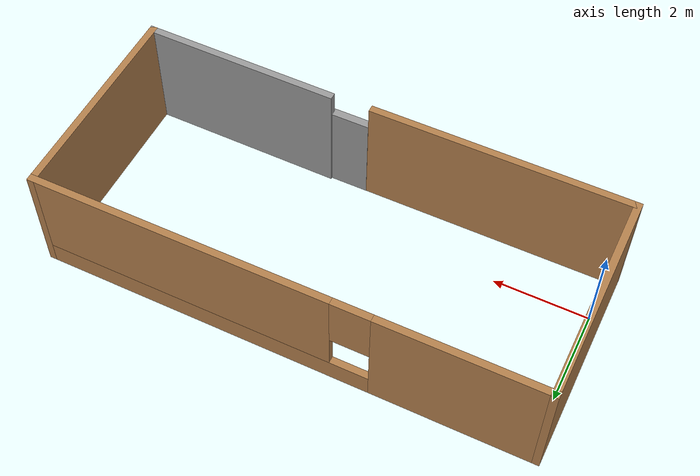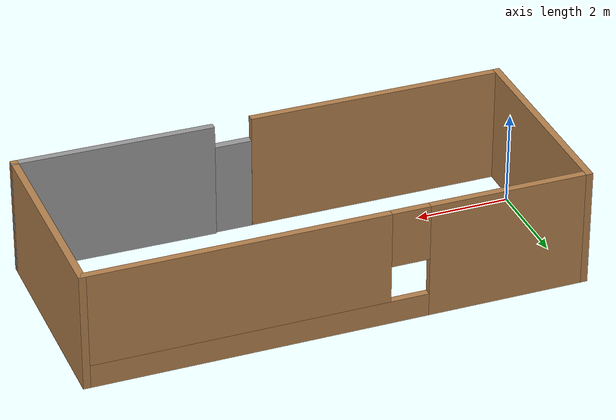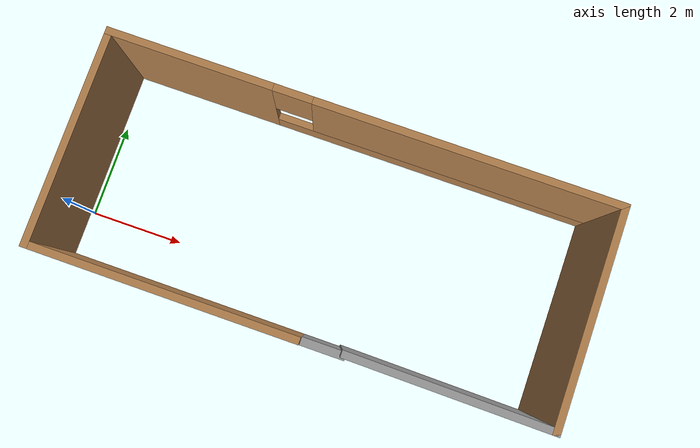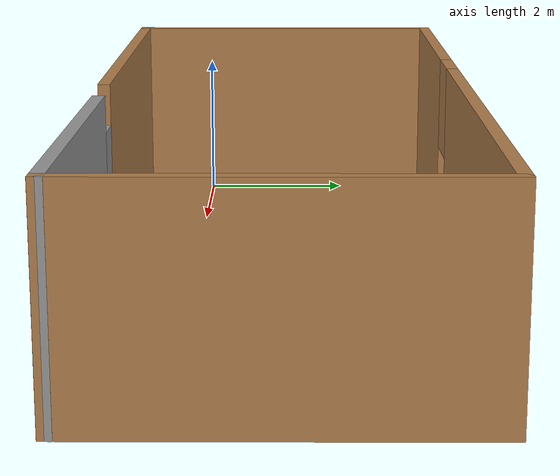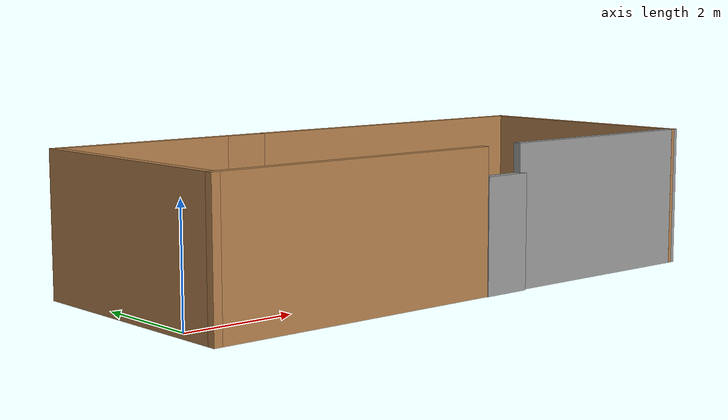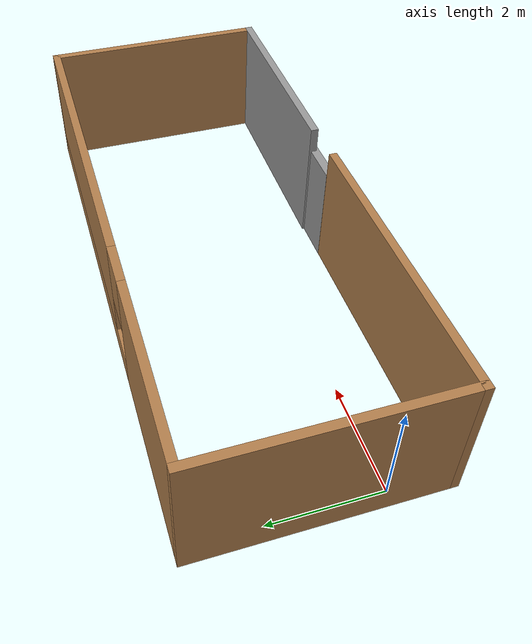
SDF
<?xml version='1.0'?>
<sdf version='1.7'>
  <model name='kiban1'>
    <pose>5.01535 1.13465 0 0 -0 0</pose>
    <link name='Door_0'>
      <collision name='Door_0_Collision'>
        <geometry>
          <box>
            <size>0.9 0.17 2</size>
          </box>
        </geometry>
        <pose>0 0 1 0 -0 0</pose>
      </collision>
      <visual name='Door_0_Visual'>
        <pose>0 0 1 0 -0 0</pose>
        <geometry>
          <box>
            <size>0.9 0.17 2</size>
          </box>
        </geometry>
        <material>
          <script>
            <uri>file://media/materials/scripts/gazebo.material</uri>
            <name>Gazebo/Grey</name>
          </script>
        </material>
      </visual>
      <pose>0.701026 -2.18255 0 0 -0 0</pose>
    </link>
    <link name='Wall_0'>
      <collision name='Wall_0_Collision'>
        <geometry>
          <box>
            <size>5.5 0.15 2.5</size>
          </box>
        </geometry>
        <pose>0 0 1.25 0 -0 0</pose>
      </collision>
      <visual name='Wall_0_Visual'>
        <pose>0 0 1.25 0 -0 0</pose>
        <geometry>
          <box>
            <size>5.5 0.15 2.5</size>
          </box>
        </geometry>
        <material>
          <script>
            <uri>file://media/materials/scripts/gazebo.material</uri>
            <name>Gazebo/Wood</name>
          </script>
          <ambient>1 1 1 1</ambient>
        </material>
        <meta>
          <layer>0</layer>
        </meta>
      </visual>
      <pose>-2.50035 -2.17465 0 0 -0 3.14159</pose>
    </link>
    <link name='Wall_1'>
      <collision name='Wall_1_Collision'>
        <geometry>
          <box>
            <size>4.5 0.15 2.5</size>
          </box>
        </geometry>
        <pose>0 0 1.25 0 -0 0</pose>
      </collision>
      <visual name='Wall_1_Visual'>
        <pose>0 0 1.25 0 -0 0</pose>
        <geometry>
          <box>
            <size>4.5 0.15 2.5</size>
          </box>
        </geometry>
        <material>
          <script>
            <uri>file://media/materials/scripts/gazebo.material</uri>
            <name>Gazebo/Wood</name>
          </script>
          <ambient>1 1 1 1</ambient>
        </material>
        <meta>
          <layer>0</layer>
        </meta>
      </visual>
      <pose>-5.17535 0.000353 0 0 -0 1.5708</pose>
    </link>
    <link name='Wall_2'>
      <pose>-0.000353 2.17535 0 0 -0 0</pose>
      <visual name='Wall_2_Visual_0'>
        <pose>-3.53832 0 1.25 0 -0 0</pose>
        <geometry>
          <box>
            <size>3.42336 0.15 2.5</size>
          </box>
        </geometry>
        <material>
          <script>
            <uri>file://media/materials/scripts/gazebo.material</uri>
            <name>Gazebo/Wood</name>
          </script>
          <ambient>1 1 1 1</ambient>
        </material>
        <meta>
          <layer>0</layer>
        </meta>
      </visual>
      <collision name='Wall_2_Collision_0'>
        <geometry>
          <box>
            <size>3.42336 0.15 2.5</size>
          </box>
        </geometry>
        <pose>-3.53832 0 1.25 0 -0 0</pose>
      </collision>
      <visual name='Wall_2_Visual_1'>
        <pose>1.71168 0 0.25 0 -0 0</pose>
        <geometry>
          <box>
            <size>7.07664 0.15 0.5</size>
          </box>
        </geometry>
        <material>
          <script>
            <uri>file://media/materials/scripts/gazebo.material</uri>
            <name>Gazebo/Wood</name>
          </script>
          <ambient>1 1 1 1</ambient>
        </material>
        <meta>
          <layer>0</layer>
        </meta>
      </visual>
      <collision name='Wall_2_Collision_1'>
        <geometry>
          <box>
            <size>7.07664 0.15 0.5</size>
          </box>
        </geometry>
        <pose>1.71168 0 0.25 0 -0 0</pose>
      </collision>
      <visual name='Wall_2_Visual_2'>
        <pose>2.11168 0 1.5 0 -0 0</pose>
        <geometry>
          <box>
            <size>6.27664 0.15 2</size>
          </box>
        </geometry>
        <material>
          <script>
            <uri>file://media/materials/scripts/gazebo.material</uri>
            <name>Gazebo/Wood</name>
          </script>
          <ambient>1 1 1 1</ambient>
        </material>
        <meta>
          <layer>0</layer>
        </meta>
      </visual>
      <collision name='Wall_2_Collision_2'>
        <geometry>
          <box>
            <size>6.27664 0.15 2</size>
          </box>
        </geometry>
        <pose>2.11168 0 1.5 0 -0 0</pose>
      </collision>
      <visual name='Wall_2_Visual_3'>
        <pose>-1.42664 0 1.9 0 -0 0</pose>
        <geometry>
          <box>
            <size>0.8 0.15 1.2</size>
          </box>
        </geometry>
        <material>
          <script>
            <uri>file://media/materials/scripts/gazebo.material</uri>
            <name>Gazebo/Wood</name>
          </script>
          <ambient>1 1 1 1</ambient>
        </material>
        <meta>
          <layer>0</layer>
        </meta>
      </visual>
      <collision name='Wall_2_Collision_3'>
        <geometry>
          <box>
            <size>0.8 0.15 1.2</size>
          </box>
        </geometry>
        <pose>-1.42664 0 1.9 0 -0 0</pose>
      </collision>
    </link>
    <link name='Wall_3'>
      <collision name='Wall_3_Collision'>
        <geometry>
          <box>
            <size>4.5 0.15 2.5</size>
          </box>
        </geometry>
        <pose>0 0 1.25 0 -0 0</pose>
      </collision>
      <visual name='Wall_3_Visual'>
        <pose>0 0 1.25 0 -0 0</pose>
        <geometry>
          <box>
            <size>4.5 0.15 2.5</size>
          </box>
        </geometry>
        <material>
          <script>
            <uri>file://media/materials/scripts/gazebo.material</uri>
            <name>Gazebo/Wood</name>
          </script>
          <ambient>1 1 1 1</ambient>
        </material>
        <meta>
          <layer>0</layer>
        </meta>
      </visual>
      <pose>5.17465 0.000353 0 0 -0 -1.5708</pose>
    </link>
    <link name='Wall_6'>
      <collision name='Wall_6_Collision'>
        <geometry>
          <box>
            <size>4.20745 0.15 2.5</size>
          </box>
        </geometry>
        <pose>0 0 1.25 0 -0 0</pose>
      </collision>
      <visual name='Wall_6_Visual'>
        <pose>0 0 1.25 0 -0 0</pose>
        <geometry>
          <box>
            <size>4.20745 0.15 2.5</size>
          </box>
        </geometry>
        <material>
          <script>
            <uri>file://media/materials/scripts/gazebo.material</uri>
            <name>Gazebo/Grey</name>
          </script>
          <ambient>1 1 1 1</ambient>
        </material>
        <meta>
          <layer>0</layer>
        </meta>
      </visual>
      <pose>3.14601 -2.15547 0 0 -0 -0.009454</pose>
    </link>
    <static>1</static>
  </model>
</sdf>
